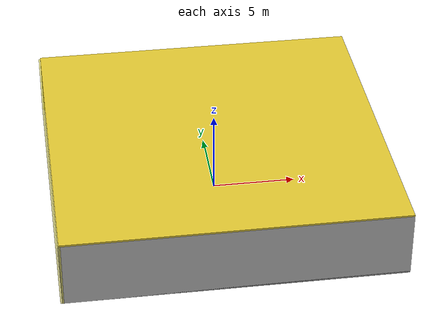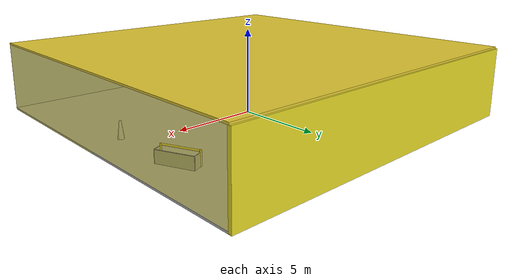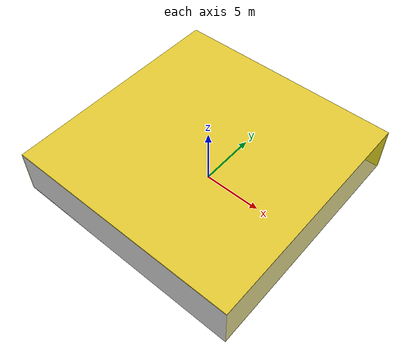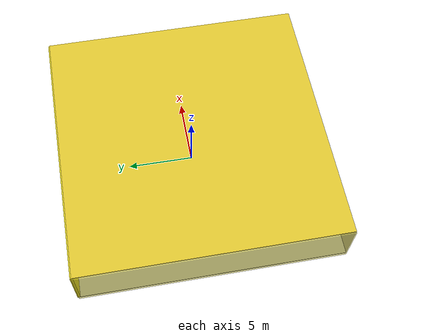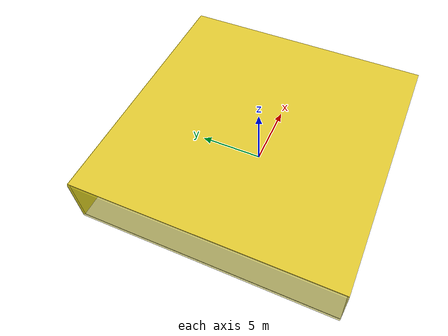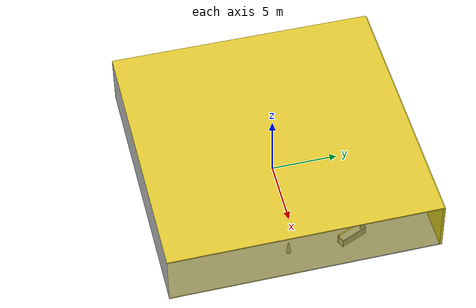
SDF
<sdf version="1.4">
 <world name="default">
  <physics type="ode">
   <max_step_size>0.001</max_step_size>
   <real_time_factor>1</real_time_factor>
   <real_time_update_rate>1000</real_time_update_rate>
   <gravity>0 0 -9.8</gravity>
  </physics>
  <scene><ambient>0.4 0.4 0.4 1</ambient><background>0.7 0.7 0.7 1</background><shadows>1</shadows></scene>
  <model name="Surrounding">
   <static>1</static>
   <link name="Ceiling">
    <collision name="Ceiling_Collision"><geometry><box><size>20 20 0.1</size></box></geometry></collision>
    <visual name="Ceiling_Visual">
     <geometry><box><size>20 20 0.1</size></box></geometry>
     <material>
      <script><uri>file://media/materials/scripts/gazebo.material</uri><name>Gazebo/ZincYellow</name></script>
     </material>
    </visual>
    <pose>0 0 4.05 0 0 0</pose>
   </link>
   <link name="Wall_South">
    <collision name="Wall_South_Collision">
     <geometry><box><size>20 0 4</size></box></geometry>
     <pose>0 0 2 0 -0 0</pose>
    </collision>
    <visual name="Wall_South_Visual">
     <pose>0 0 2 0 -0 0</pose>
     <geometry><box><size>20 0 4</size></box></geometry>
     <material>
      <script><uri>file://media/materials/scripts/gazebo.material</uri><name>Gazebo/CloudySky</name></script>
     </material>
    </visual>
    <velocity_decay><linear>0</linear><angular>0</angular></velocity_decay>
    <pose>0 -10 0 0 -0 0</pose>
   </link>
   <link name="Wall_East">
    <collision name="Wall_21_Collision">
     <geometry><box><size>20 0 4</size></box></geometry>
     <pose>0 0 2 0 -0 0</pose>
    </collision>
    <visual name="Wall_21_Visual">
     <pose>0 0 2 0 -0 0</pose>
     <geometry><box><size>20 0 4</size></box></geometry>
     <material>
      <script>
       <uri>file://media/materials/scripts/gazebo.material</uri>
       <name>Gazebo/YellowTransparent</name>
      </script>
     </material>
    </visual>
    <velocity_decay><linear>0</linear><angular>0</angular></velocity_decay>
    <pose>10 0 0 0 -0 1.5708</pose>
   </link>
   <link name="Wall_North">
    <collision name="Wall_22_Collision">
     <geometry><box><size>20 0.2 4</size></box></geometry>
     <pose>0 0 2 0 -0 0</pose>
    </collision>
    <visual name="Wall_22_Visual">
     <pose>0 0 2 0 -0 0</pose>
     <geometry><box><size>20 0.2 4</size></box></geometry>
     <material>
      <script><uri>file://media/materials/scripts/gazebo.material</uri><name>Gazebo/Yellow</name></script>
     </material>
    </visual>
    <velocity_decay><linear>0</linear><angular>0</angular></velocity_decay>
    <pose>0 10 0 0 -0 0</pose>
   </link>
   <link name="Wall_West">
    <collision name="Wall_23_Collision">
     <geometry><box><size>20 0.2 4</size></box></geometry>
     <pose>0 0 2 0 -0 0</pose>
    </collision>
    <visual name="Wall_23_Visual">
     <pose>0 0 2 0 -0 0</pose>
     <geometry><box><size>20 0.2 4</size></box></geometry>
     <material>
      <script>
       <uri>file://media/materials/scripts/gazebo.material</uri>
       <name>Gazebo/YellowTransparent</name>
      </script>
     </material>
    </visual>
    <velocity_decay><linear>0</linear><angular>0</angular></velocity_decay>
    <pose>-10 0 0 0 0 -1.5708</pose>
   </link>
   <link name="Ground_link">
    <collision name="collision">
     <pose>0 0 .05 0 -0 0</pose>
     <geometry><box><size>20 20 0.1</size></box></geometry>
    </collision>
    <visual name="visual">
     <pose>0 0 .05 0 -0 0</pose>
     <geometry><box><size>20 20 0.1</size></box></geometry>
     <material>
      <script><uri>file://media/materials/scripts/gazebo.material</uri><name>Gazebo/CloudySky</name></script>
     </material>
    </visual>
   </link>
   <static>1</static>
  </model>
  <spherical_coordinates>
   <surface_model>EARTH_WGS84</surface_model>
   <latitude_deg>0</latitude_deg>
   <longitude_deg>0</longitude_deg>
   <elevation>0</elevation>
   <heading_deg>0</heading_deg>
  </spherical_coordinates>
  <light name="lightball_0" type="diffuse">
   <diffuse>0.8 0.8 0.8 1</diffuse>
   <specular>0.2 0.2 0.2 1</specular>
   <attenuation>
    <range>100</range>
    <constant>0.7</constant>
    <linear>0.01</linear>
    <quadratic>0.001</quadratic>
   </attenuation>
   <direction>-0.5 0.1 -0.9</direction>
   <pose>5.59294662593 -3.59970192319 0.845804191457 0 0 0</pose>
  </light>
  <light name="lightball_1" type="diffuse">
   <diffuse>0.8 0.8 0.8 1</diffuse>
   <specular>0.2 0.2 0.2 1</specular>
   <attenuation>
    <range>100</range>
    <constant>0.7</constant>
    <linear>0.01</linear>
    <quadratic>0.001</quadratic>
   </attenuation>
   <direction>-0.5 0.1 -0.9</direction>
   <pose>6.00314862358 -3.59347628409 3.62165594103 0 0 0</pose>
  </light>
  <light name="lightball_2" type="diffuse">
   <diffuse>0.8 0.8 0.8 1</diffuse>
   <specular>0.2 0.2 0.2 1</specular>
   <attenuation>
    <range>100</range>
    <constant>0.7</constant>
    <linear>0.01</linear>
    <quadratic>0.001</quadratic>
   </attenuation>
   <direction>-0.5 0.1 -0.9</direction>
   <pose>-5.00239813222 2.39485711199 3.42428498361 0 0 0</pose>
  </light>
  <light name="lightball_3" type="diffuse">
   <diffuse>0.8 0.8 0.8 1</diffuse>
   <specular>0.2 0.2 0.2 1</specular>
   <attenuation>
    <range>100</range>
    <constant>0.7</constant>
    <linear>0.01</linear>
    <quadratic>0.001</quadratic>
   </attenuation>
   <direction>-0.5 0.1 -0.9</direction>
   <pose>0.628882788253 -1.09261374173 3.82562663644 0 0 0</pose>
  </light>
  <light name="lightball_4" type="diffuse">
   <diffuse>0.8 0.8 0.8 1</diffuse>
   <specular>0.2 0.2 0.2 1</specular>
   <attenuation>
    <range>100</range>
    <constant>0.7</constant>
    <linear>0.01</linear>
    <quadratic>0.001</quadratic>
   </attenuation>
   <direction>-0.5 0.1 -0.9</direction>
   <pose>3.19476834027 6.19232668975 1.2958296637 0 0 0</pose>
  </light>
  <light name="lightball_5" type="diffuse">
   <diffuse>0.8 0.8 0.8 1</diffuse>
   <specular>0.2 0.2 0.2 1</specular>
   <attenuation>
    <range>100</range>
    <constant>0.7</constant>
    <linear>0.01</linear>
    <quadratic>0.001</quadratic>
   </attenuation>
   <direction>-0.5 0.1 -0.9</direction>
   <pose>-5.78571045116 7.29837812513 2.36251342372 0 0 0</pose>
  </light>
  <light name="lightball_6" type="diffuse">
   <diffuse>0.8 0.8 0.8 1</diffuse>
   <specular>0.2 0.2 0.2 1</specular>
   <attenuation>
    <range>100</range>
    <constant>0.7</constant>
    <linear>0.01</linear>
    <quadratic>0.001</quadratic>
   </attenuation>
   <direction>-0.5 0.1 -0.9</direction>
   <pose>6.31293204431 2.59841503344 1.40803203246 0 0 0</pose>
  </light>
  <light name="lightball_7" type="diffuse">
   <diffuse>0.8 0.8 0.8 1</diffuse>
   <specular>0.2 0.2 0.2 1</specular>
   <attenuation>
    <range>100</range>
    <constant>0.7</constant>
    <linear>0.01</linear>
    <quadratic>0.001</quadratic>
   </attenuation>
   <direction>-0.5 0.1 -0.9</direction>
   <pose>-7.39241295163 -7.63212826676 2.54097667457 0 0 0</pose>
  </light>
  <light name="lightball_8" type="diffuse">
   <diffuse>0.8 0.8 0.8 1</diffuse>
   <specular>0.2 0.2 0.2 1</specular>
   <attenuation>
    <range>100</range>
    <constant>0.7</constant>
    <linear>0.01</linear>
    <quadratic>0.001</quadratic>
   </attenuation>
   <direction>-0.5 0.1 -0.9</direction>
   <pose>-3.84583714704 -4.61706906485 0.59391607653 0 0 0</pose>
  </light>
  <light name="lightball_9" type="diffuse">
   <diffuse>0.8 0.8 0.8 1</diffuse>
   <specular>0.2 0.2 0.2 1</specular>
   <attenuation>
    <range>100</range>
    <constant>0.7</constant>
    <linear>0.01</linear>
    <quadratic>0.001</quadratic>
   </attenuation>
   <direction>-0.5 0.1 -0.9</direction>
   <pose>-8.35953533928 0.727217294731 2.923056731 0 0 0</pose>
  </light>
  <light name="lightball_10" type="diffuse">
   <diffuse>0.8 0.8 0.8 1</diffuse>
   <specular>0.2 0.2 0.2 1</specular>
   <attenuation>
    <range>100</range>
    <constant>0.7</constant>
    <linear>0.01</linear>
    <quadratic>0.001</quadratic>
   </attenuation>
   <direction>-0.5 0.1 -0.9</direction>
   <pose>9.43090283266 9.38626601487 2.67177602501 0 0 0</pose>
  </light>
  <light name="lightball_11" type="diffuse">
   <diffuse>0.8 0.8 0.8 1</diffuse>
   <specular>0.2 0.2 0.2 1</specular>
   <attenuation>
    <range>100</range>
    <constant>0.7</constant>
    <linear>0.01</linear>
    <quadratic>0.001</quadratic>
   </attenuation>
   <direction>-0.5 0.1 -0.9</direction>
   <pose>-8.29256565966 -7.33628314288 3.08520561857 0 0 0</pose>
  </light>
  <include><uri>model://cabinet</uri><pose>-4.74960406669 7.58595713114 0 0 0 1.92369375728</pose></include>
  <include>
   <uri>model://construction_cone</uri>
   <pose>8.05783557461 -0.834523105233 0 0 0 1.7632066361</pose>
  </include>
  <include>
   <uri>model://robocup_3Dsim_goal</uri>
   <pose>7.64588366292 3.81587184237 0 0 0 0.411330297075</pose>
  </include>
 </world>
</sdf>

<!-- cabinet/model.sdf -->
<sdf version="1.5">
  <model name="cabinet">
    <static>true</static>
    <link name="cabinet_bottom_plate">
      <inertial>
        <pose>0 0 -1 0 0 0</pose>
        <inertia>
          <ixx>2.050000</ixx>
          <ixy>0</ixy>
          <ixz>0</ixz>
          <iyy>2.050000</iyy>
          <iyz>0</iyz>
          <izz>2.050000</izz>
        </inertia>
        <mass>25.000000</mass>
      </inertial>
      <collision name="cabinet_bottom_plate_geom">
        <pose>0 0 0.010000 0 0 0</pose>
        <geometry>
          <box>
            <size>0.450000 0.450000 0.020000</size>
          </box>
        </geometry>
      </collision>
      <visual name="cabinet_bottom_plate_geom_visual">
        <pose>0 0 0.010000 0 0 0</pose>
        <geometry>
          <box>
            <size>0.450000 0.450000 0.020000</size>
          </box>
        </geometry>
        <material>
          <script>
            <uri>model://media/materials/scripts/gazebo.material</uri>
            <name>Gazebo/Wood</name>
          </script>
        </material>
      </visual>
      <collision name="cabinet_bottom_plate_geom_cabinet_back_plate">
        <pose>0.235000 0 0.510000 0 0 0</pose>
        <geometry>
          <box>
            <size>0.020000 0.450000 1.020000</size>
          </box>
        </geometry>
      </collision>
      <visual name="cabinet_bottom_plate_geom_cabinet_back_plate_visual">
        <pose>0.235000 0 0.510000 0 0 0</pose>
        <geometry>
          <box>
            <size>0.020000 0.450000 1.020000</size>
          </box>
        </geometry>
        <material>
          <script>
            <uri>model://media/materials/scripts/gazebo.material</uri>
            <name>Gazebo/Wood</name>
          </script>
        </material>
      </visual>
      <collision name="cabinet_bottom_plate_geom_cabinet_left_plate">
        <pose>0 0.235000 0.510000 0 0 0</pose>
        <geometry>
          <box>
            <size>0.450000 0.020000 1.020000</size>
          </box>
        </geometry>
      </collision>
      <visual name="cabinet_bottom_plate_geom_cabinet_left_plate_visual">
        <pose>0 0.235000 0.510000 0 0 0</pose>
        <geometry>
          <box>
            <size>0.450000 0.020000 1.020000</size>
          </box>
        </geometry>
        <material>
          <script>
            <uri>model://media/materials/scripts/gazebo.material</uri>
            <name>Gazebo/Wood</name>
          </script>
        </material>
      </visual>
      <collision name="cabinet_bottom_plate_geom_cabinet_middle_plate">
        <pose>0 0 0.510000 0 0 0</pose>
        <geometry>
          <box>
            <size>0.450000 0.450000 0.020000</size>
          </box>
        </geometry>
      </collision>
      <visual name="cabinet_bottom_plate_geom_cabinet_middle_plate_visual">
        <pose>0 0 0.510000 0 0 0</pose>
        <geometry>
          <box>
            <size>0.450000 0.450000 0.020000</size>
          </box>
        </geometry>
        <material>
          <script>
            <uri>model://media/materials/scripts/gazebo.material</uri>
            <name>Gazebo/Wood</name>
          </script>
        </material>
      </visual>
      <collision name="cabinet_bottom_plate_geom_cabinet_right_plate">
        <pose>0 -0.235000 0.510000 0 0 0</pose>
        <geometry>
          <box>
            <size>0.450000 0.020000 1.020000</size>
          </box>
        </geometry>
      </collision>
      <visual name="cabinet_bottom_plate_geom_cabinet_right_plate_visual">
        <pose>0 -0.235000 0.510000 0 0 0</pose>
        <geometry>
          <box>
            <size>0.450000 0.020000 1.020000</size>
          </box>
        </geometry>
        <material>
          <script>
            <uri>model://media/materials/scripts/gazebo.material</uri>
            <name>Gazebo/Wood</name>
          </script>
        </material>
      </visual>
      <collision name="cabinet_bottom_plate_geom_cabinet_top_plate">
        <pose>0 0 1.010000 0 0 0</pose>
        <geometry>
          <box>
            <size>0.450000 0.450000 0.020000</size>
          </box>
        </geometry>
      </collision>
      <visual name="cabinet_bottom_plate_geom_cabinet_top_plate_visual">
        <pose>0 0 1.010000 0 0 0</pose>
        <geometry>
          <box>
            <size>0.450000 0.450000 0.020000</size>
          </box>
        </geometry>
        <material>
          <script>
            <uri>model://media/materials/scripts/gazebo.material</uri>
            <name>Gazebo/Wood</name>
          </script>
        </material>
      </visual>
    </link>
  </model>
</sdf>

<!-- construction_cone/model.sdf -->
<sdf version="1.5">
  <model name="Construction Cone">
    <link name="link">
      <collision name="collision">
        <geometry>
          <mesh>
            <scale>10 10 10</scale>
            <uri>file://isr-testbed/construction_cone/meshes/construction_cone.dae</uri>
          </mesh>
        </geometry>
      </collision>
      <visual name="visual">
        <geometry>
          <mesh>
            <scale>10 10 10</scale>
            <uri>file://isr-testbed/construction_cone/meshes/construction_cone.dae</uri>
          </mesh>
        </geometry>
      </visual>
    </link>
  </model>
</sdf>

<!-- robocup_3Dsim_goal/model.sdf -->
<sdf version="1.5">
  <model name="robocup_3d_goal">
    <static>true</static>
    <link name="left_post">
      <pose>0 1.05 0.45 0 0 0</pose>
      <collision name="collision">
        <geometry>
          <cylinder>
            <radius>0.05</radius>
            <length>0.9</length>
          </cylinder>
        </geometry>
      </collision>
      <visual name="visual">
        <geometry>
          <cylinder>
            <radius>0.05</radius>
            <length>0.9</length>
          </cylinder>
        </geometry>
        <material>
          <script>
            <uri>file://media/materials/scripts/gazebo.material</uri>
            <name>Gazebo/ZincYellow</name>
          </script>
        </material>
      </visual>
    </link>
    <link name="left_support_horiz_lower">
      <pose>0.30 1.05 0.01 0 0 0</pose>
      <collision name="collision">
        <geometry>
          <box>
            <size>0.50 0.02 0.02</size>
          </box>
        </geometry>
      </collision>
      <visual name="visual">
        <geometry>
          <box>
            <size>0.50 0.02 0.02</size>
          </box>
        </geometry>
        <material>
          <script>
            <uri>file://media/materials/scripts/gazebo.material</uri>
            <name>Gazebo/White</name>
          </script>
        </material>
      </visual>
    </link>
    <link name="left_support_horiz_upper">
      <pose>0.30 1.05 0.79 0 0 0</pose>
      <collision name="collision">
        <geometry>
          <box>
            <size>0.50 0.02 0.02</size>
          </box>
        </geometry>
      </collision>
      <visual name="visual">
        <geometry>
          <box>
            <size>0.50 0.02 0.02</size>
          </box>
        </geometry>
        <material>
          <script>
            <uri>file://media/materials/scripts/gazebo.material</uri>
            <name>Gazebo/White</name>
          </script>
        </material>
      </visual>
    </link>
    <link name="left_support_vertical">
      <pose>0.56 1.05 0.4 0 1.5708 0</pose>
      <collision name="collision">
        <geometry>
          <box>
            <size>0.80 0.02 0.02</size>
          </box>
        </geometry>
      </collision>
      <visual name="visual">
        <geometry>
          <box>
            <size>0.80 0.02 0.02</size>
          </box>
        </geometry>
        <material>
          <script>
            <uri>file://media/materials/scripts/gazebo.material</uri>
            <name>Gazebo/White</name>
          </script>
        </material>
      </visual>
    </link>
    <link name="right_support_horiz_lower">
      <pose>0.30 -1.05 0.01 0 0 0</pose>
      <collision name="collision">
        <geometry>
          <box>
            <size>0.50 0.02 0.02</size>
          </box>
        </geometry>
      </collision>
      <visual name="visual">
        <geometry>
          <box>
            <size>0.50 0.02 0.02</size>
          </box>
        </geometry>
        <material>
          <script>
            <uri>file://media/materials/scripts/gazebo.material</uri>
            <name>Gazebo/White</name>
          </script>
        </material>
      </visual>
    </link>
    <link name="right_support_horiz_upper">
      <pose>0.30 -1.05 0.79 0 0 0</pose>
      <collision name="collision">
        <geometry>
          <box>
            <size>0.50 0.02 0.02</size>
          </box>
        </geometry>
      </collision>
      <visual name="visual">
        <geometry>
          <box>
            <size>0.50 0.02 0.02</size>
          </box>
        </geometry>
        <material>
          <script>
            <uri>file://media/materials/scripts/gazebo.material</uri>
            <name>Gazebo/White</name>
          </script>
        </material>
      </visual>
    </link>
    <link name="right_support_vertical">
      <pose>0.56 -1.05 0.4 0 1.5708 0</pose>
      <collision name="collision">
        <geometry>
          <box>
            <size>0.80 0.02 0.02</size>
          </box>
        </geometry>
      </collision>
      <visual name="visual">
        <geometry>
          <box>
            <size>0.80 0.02 0.02</size>
          </box>
        </geometry>
        <material>
          <script>
            <uri>file://media/materials/scripts/gazebo.material</uri>
            <name>Gazebo/White</name>
          </script>
        </material>
      </visual>
    </link>
    <link name="center_support_horiz_lower">
      <pose>0.56 0 0.01 0 1.5708 0</pose>
      <collision name="collision">
        <geometry>
          <box>
            <size>0.02 2.08 0.02</size>
          </box>
        </geometry>
      </collision>
      <visual name="visual">
        <geometry>
          <box>
            <size>0.02 2.08 0.02</size>
          </box>
        </geometry>
        <material>
          <script>
            <uri>file://media/materials/scripts/gazebo.material</uri>
            <name>Gazebo/White</name>
          </script>
        </material>
      </visual>
    </link>
    <link name="center_support_horiz_upper">
      <pose>0.56 0 0.79 0 1.5708 0</pose>
      <collision name="collision">
        <geometry>
          <box>
            <size>0.02 2.08 0.02</size>
          </box>
        </geometry>
      </collision>
      <visual name="visual">
        <geometry>
          <box>
            <size>0.02 2.08 0.02</size>
          </box>
        </geometry>
        <material>
          <script>
            <uri>file://media/materials/scripts/gazebo.material</uri>
            <name>Gazebo/White</name>
          </script>
        </material>
      </visual>
    </link>
    <link name="right_post">
      <pose>0 -1.05 0.45 0 0 0</pose>
      <collision name="collision">
        <geometry>
          <cylinder>
            <radius>0.05</radius>
            <length>0.9</length>
          </cylinder>
        </geometry>
      </collision>
      <visual name="visual">
        <geometry>
          <cylinder>
            <radius>0.05</radius>
            <length>0.9</length>
          </cylinder>
        </geometry>
        <material>
          <script>
            <uri>file://media/materials/scripts/gazebo.material</uri>
            <name>Gazebo/ZincYellow</name>
          </script>
        </material>
      </visual>
    </link>
    <link name="crossbar">
      <pose>0 0 0.85 1.57 1.57 0</pose>
      <collision name="collision">
        <geometry>
          <cylinder>
            <radius>0.05</radius>
            <length>2.0</length>
          </cylinder>
        </geometry>
      </collision>
      <visual name="visual">
        <geometry>
          <cylinder>
            <radius>0.05</radius>
            <length>2.0</length>
          </cylinder>
        </geometry>
        <material>
          <script>
            <uri>file://media/materials/scripts/gazebo.material</uri>
            <name>Gazebo/ZincYellow</name>
          </script>
        </material>
      </visual>
    </link>
    <link name="center_net">
      <pose>0.56 0 0.40 0 0 0</pose>
      <collision name="collision">
        <geometry>
          <box>
            <size>0.01 2.1 0.80</size>
          </box>
        </geometry>
      </collision>
      <visual name="visual">
        <geometry>
          <box>
            <size>0.01 2.1 0.80</size>
          </box>
        </geometry>
        <material>
          <script>
            <uri>model://../model_source/models/robocup09_spl_field/materials/scripts/</uri>
            <uri>model://../model_source/models/robocup09_spl_field/materials/textures/</uri>
            <name>RoboCup/Net</name>
          </script>
        </material>
      </visual>
    </link>
    <link name="left_net">
      <pose>0.30 1.05 0.40 0 0 0</pose>
      <collision name="collision">
        <geometry>
          <box>
            <size>0.50 0.01 0.76</size>
          </box>
        </geometry>
      </collision>
      <visual name="visual">
        <geometry>
          <box>
            <size>0.50 0.01 0.76</size>
          </box>
        </geometry>
        <material>
          <script>
            <uri>model://../model_source/models/robocup09_spl_field/materials/scripts/</uri>
            <uri>model://../model_source/models/robocup09_spl_field/materials/textures/</uri>
            <name>RoboCup/Net</name>
          </script>
        </material>
      </visual>
    </link>
    <link name="right_net">
      <pose>0.30 -1.05 0.40 0 0 0</pose>
      <collision name="collision">
        <geometry>
          <box>
            <size>0.50 0.01 0.76</size>
          </box>
        </geometry>
      </collision>
      <visual name="visual">
        <geometry>
          <box>
            <size>0.50 0.01 0.76</size>
          </box>
        </geometry>
        <material>
          <script>
            <uri>model://../model_source/models/robocup09_spl_field/materials/scripts/</uri>
            <uri>model://../model_source/models/robocup09_spl_field/materials/textures/</uri>
            <name>RoboCup/Net</name>
          </script>
        </material>
      </visual>
    </link>
  </model>
</sdf>
